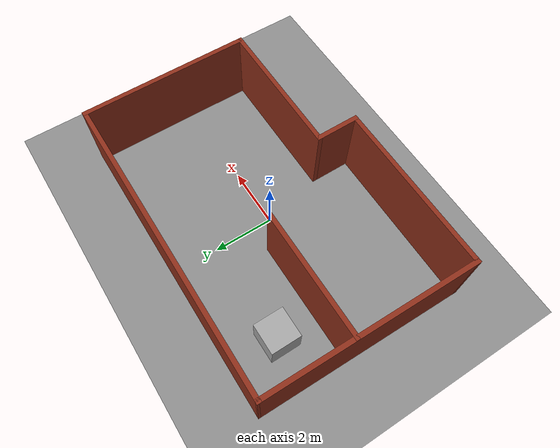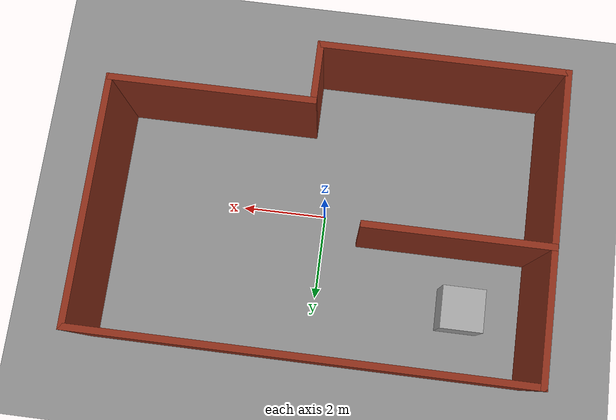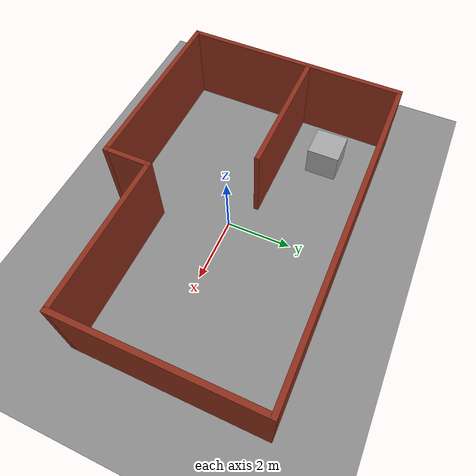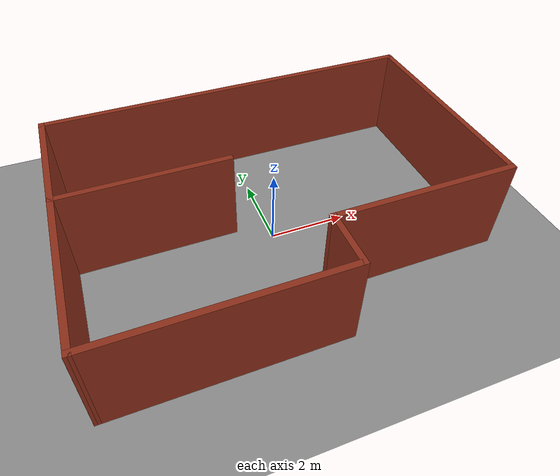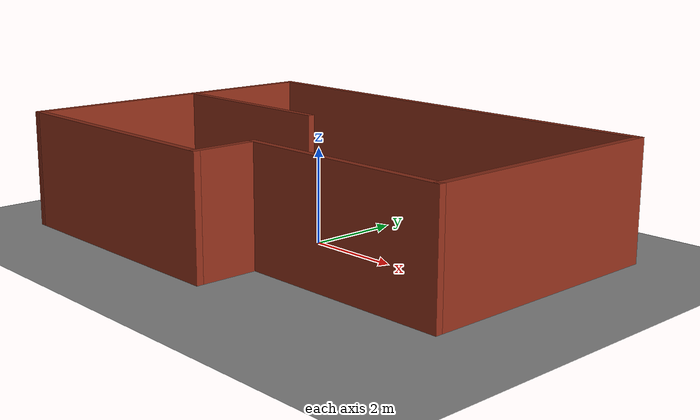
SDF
<?xml version='1.0' encoding='utf-8'?>
<sdf version="1.8">
  <world name="default">
    <physics name="1ms" type="ignored">
      <max_step_size>0.001</max_step_size>
      <real_time_factor>1.0</real_time_factor>
      <real_time_update_rate>1000</real_time_update_rate>
    </physics>
    <plugin
      filename="ignition-gazebo-physics-system"
      name="gz::sim::systems::Physics">
    </plugin>
    <plugin
      filename="ignition-gazebo-sensors-system"
      name="gz::sim::systems::Sensors">
      <render_engine>ogre2</render_engine>
    </plugin>
    <plugin
      filename="ignition-gazebo-air-pressure-system"
      name="gz::sim::systems::AirPressure">
    </plugin>
    <plugin
      filename="ignition-gazebo-altimeter-system"
      name="gz::sim::systems::Altimeter">
    </plugin>
    <plugin
      filename="ignition-gazebo-imu-system"
      name="gz::sim::systems::Imu">
    </plugin>
    <plugin
      filename="ignition-gazebo-magnetometer-system"
      name="gz::sim::systems::Magnetometer">
    </plugin>
    <plugin
      filename="ignition-gazebo-forcetorque-system"
      name="ignition::gazebo::systems::ForceTorque">
    </plugin>
    <plugin
      filename="ignition-gazebo-user-commands-system"
      name="gz::sim::systems::UserCommands">
    </plugin>
    <plugin
      filename="ignition-gazebo-scene-broadcaster-system"
      name="gz::sim::systems::SceneBroadcaster">
    </plugin>

    <light name="sun" type="directional">
      <cast_shadows>true</cast_shadows>
      <pose>0 0 10 0 -0 0</pose>
      <diffuse>0.8 0.8 0.8 1</diffuse>
      <specular>0.2 0.2 0.2 1</specular>
      <attenuation>
        <range>1000</range>
        <constant>0.9</constant>
        <linear>0.01</linear>
        <quadratic>0.001</quadratic>
      </attenuation>
      <direction>-0.5 0.1 -0.9</direction>
      <intensity>1.0</intensity>
    </light>
    <model name="ground_plane">
      <static>true</static>
      <link name="link">
        <collision name="collision">
          <geometry>
            <plane>
              <normal>0 0 1</normal>
              <size>100 100</size>
            </plane>
          </geometry>
          <surface>
            <friction>
              <ode>
                <mu>1.0</mu>
                <mu2>1.0</mu2>
              </ode>
              <torsional>
                <ode />
              </torsional>
            </friction>
            <contact>
              <ode />
            </contact>
            <bounce />
          </surface>
          <max_contacts>10</max_contacts>
        </collision>
        <visual name="visual">
          <cast_shadows>false</cast_shadows>
          <geometry>
            <plane>
              <normal>0 0 1</normal>
              <size>100 100</size>
            </plane>
          </geometry>
          <material>
            <ambient>0.55 0.55 0.55 1</ambient>
            <diffuse>0.55 0.55 0.55 1</diffuse>
            <specular>0.1 0.1 0.1 1</specular>
          </material>
        </visual>
        <self_collide>false</self_collide>
        <enable_wind>false</enable_wind>
        <kinematic>false</kinematic>
      </link>
    </model>
    <gravity>0 0 -9.81</gravity>
    <magnetic_field>6e-06 2.3e-05 -4.2e-05</magnetic_field>
    <atmosphere type="adiabatic" />
    <scene>
      <ambient>0.4 0.4 0.4 1</ambient>
      <background>0.7 0.7 0.7 1</background>
      <shadows>true</shadows>
    </scene>
    <wind />
    <spherical_coordinates>
      <surface_model>EARTH_WGS84</surface_model>
      <latitude_deg>0</latitude_deg>
      <longitude_deg>0</longitude_deg>
      <elevation>0</elevation>
      <heading_deg>0</heading_deg>
    </spherical_coordinates>
    <model name="mrworld">
      <pose>0.020942 0.031132 0 0 -0 0</pose>
      <link name="Wall_0">
        <collision name="Wall_0_Collision">
          <geometry>
            <box>
              <size>10.25 0.15 2.5</size>
            </box>
          </geometry>
          <pose>0 0 1.25 0 -0 0</pose>
          <max_contacts>10</max_contacts>
          <surface>
            <contact>
              <ode />
            </contact>
            <bounce />
            <friction>
              <torsional>
                <ode />
              </torsional>
              <ode />
            </friction>
          </surface>
        </collision>
        <visual name="Wall_0_Visual">
          <pose>0 0 1.25 0 -0 0</pose>
          <geometry>
            <box>
              <size>10.25 0.15 2.5</size>
            </box>
          </geometry>
          <material>
            <ambient>0.55 0.18 0.10 1</ambient>
            <diffuse>0.55 0.18 0.10 1</diffuse>
            <specular>0.1 0.1 0.1 1</specular>
          </material>
        </visual>
        <pose>0.050535 3.475 0 0 -0 0</pose>
        <self_collide>false</self_collide>
        <enable_wind>false</enable_wind>
        <kinematic>false</kinematic>
      </link>
      <link name="Wall_1">
        <collision name="Wall_1_Collision">
          <geometry>
            <box>
              <size>5.75 0.15 2.5</size>
            </box>
          </geometry>
          <pose>0 0 1.25 0 -0 0</pose>
          <max_contacts>10</max_contacts>
          <surface>
            <contact>
              <ode />
            </contact>
            <bounce />
            <friction>
              <torsional>
                <ode />
              </torsional>
              <ode />
            </friction>
          </surface>
        </collision>
        <visual name="Wall_1_Visual">
          <pose>0 0 1.25 0 -0 0</pose>
          <geometry>
            <box>
              <size>5.75 0.15 2.5</size>
            </box>
          </geometry>
          <material>
            <ambient>0.55 0.18 0.10 1</ambient>
            <diffuse>0.55 0.18 0.10 1</diffuse>
            <specular>0.1 0.1 0.1 1</specular>
          </material>
        </visual>
        <pose>5.10053 0.675 0 0 -0 -1.5708</pose>
        <self_collide>false</self_collide>
        <enable_wind>false</enable_wind>
        <kinematic>false</kinematic>
      </link>
      <link name="Wall_2">
        <collision name="Wall_2_Collision">
          <geometry>
            <box>
              <size>4.75 0.15 2.5</size>
            </box>
          </geometry>
          <pose>0 0 1.25 0 -0 0</pose>
          <max_contacts>10</max_contacts>
          <surface>
            <contact>
              <ode />
            </contact>
            <bounce />
            <friction>
              <torsional>
                <ode />
              </torsional>
              <ode />
            </friction>
          </surface>
        </collision>
        <visual name="Wall_2_Visual">
          <pose>0 0 1.25 0 -0 0</pose>
          <geometry>
            <box>
              <size>4.75 0.15 2.5</size>
            </box>
          </geometry>
          <material>
            <ambient>0.55 0.18 0.10 1</ambient>
            <diffuse>0.55 0.18 0.10 1</diffuse>
            <specular>0.1 0.1 0.1 1</specular>
          </material>
        </visual>
        <pose>2.80053 -2.125 0 0 -0 3.14159</pose>
        <self_collide>false</self_collide>
        <enable_wind>false</enable_wind>
        <kinematic>false</kinematic>
      </link>
      <link name="Wall_3">
        <collision name="Wall_3_Collision">
          <geometry>
            <box>
              <size>1.5 0.15 2.5</size>
            </box>
          </geometry>
          <pose>0 0 1.25 0 -0 0</pose>
          <max_contacts>10</max_contacts>
          <surface>
            <contact>
              <ode />
            </contact>
            <bounce />
            <friction>
              <torsional>
                <ode />
              </torsional>
              <ode />
            </friction>
          </surface>
        </collision>
        <visual name="Wall_3_Visual">
          <pose>0 0 1.25 0 -0 0</pose>
          <geometry>
            <box>
              <size>1.5 0.15 2.5</size>
            </box>
          </geometry>
          <material>
            <ambient>0.55 0.18 0.10 1</ambient>
            <diffuse>0.55 0.18 0.10 1</diffuse>
            <specular>0.1 0.1 0.1 1</specular>
          </material>
        </visual>
        <pose>0.500535 -2.8 0 0 -0 -1.5708</pose>
        <self_collide>false</self_collide>
        <enable_wind>false</enable_wind>
        <kinematic>false</kinematic>
      </link>
      <link name="Wall_4">
        <collision name="Wall_4_Collision">
          <geometry>
            <box>
              <size>5.75 0.15 2.5</size>
            </box>
          </geometry>
          <pose>0 0 1.25 0 -0 0</pose>
          <max_contacts>10</max_contacts>
          <surface>
            <contact>
              <ode />
            </contact>
            <bounce />
            <friction>
              <torsional>
                <ode />
              </torsional>
              <ode />
            </friction>
          </surface>
        </collision>
        <visual name="Wall_4_Visual">
          <pose>0 0 1.25 0 -0 0</pose>
          <geometry>
            <box>
              <size>5.75 0.15 2.5</size>
            </box>
          </geometry>
          <material>
            <ambient>0.55 0.18 0.10 1</ambient>
            <diffuse>0.55 0.18 0.10 1</diffuse>
            <specular>0.1 0.1 0.1 1</specular>
          </material>
        </visual>
        <pose>-2.29946 -3.475 0 0 -0 3.14159</pose>
        <self_collide>false</self_collide>
        <enable_wind>false</enable_wind>
        <kinematic>false</kinematic>
      </link>
      <link name="Wall_5">
        <collision name="Wall_5_Collision">
          <geometry>
            <box>
              <size>7.10072 0.15 2.5</size>
            </box>
          </geometry>
          <pose>0 0 1.25 0 -0 0</pose>
          <max_contacts>10</max_contacts>
          <surface>
            <contact>
              <ode />
            </contact>
            <bounce />
            <friction>
              <torsional>
                <ode />
              </torsional>
              <ode />
            </friction>
          </surface>
        </collision>
        <visual name="Wall_5_Visual">
          <pose>0 0 1.25 0 -0 0</pose>
          <geometry>
            <box>
              <size>7.10072 0.15 2.5</size>
            </box>
          </geometry>
          <material>
            <ambient>0.55 0.18 0.10 1</ambient>
            <diffuse>0.55 0.18 0.10 1</diffuse>
            <specular>0.1 0.1 0.1 1</specular>
          </material>
        </visual>
        <pose>-5.04946 0 0 0 -0 1.55641</pose>
        <self_collide>false</self_collide>
        <enable_wind>false</enable_wind>
        <kinematic>false</kinematic>
      </link>
      <link name="Wall_7">
        <collision name="Wall_7_Collision">
          <geometry>
            <box>
              <size>4.25 0.15 2.5</size>
            </box>
          </geometry>
          <pose>0 0 1.25 0 -0 0</pose>
          <max_contacts>10</max_contacts>
          <surface>
            <contact>
              <ode />
            </contact>
            <bounce />
            <friction>
              <torsional>
                <ode />
              </torsional>
              <ode />
            </friction>
          </surface>
        </collision>
        <visual name="Wall_7_Visual">
          <pose>0 0 1.25 0 -0 0</pose>
          <geometry>
            <box>
              <size>4.25 0.15 2.5</size>
            </box>
          </geometry>
          <material>
            <ambient>0.55 0.18 0.10 1</ambient>
            <diffuse>0.55 0.18 0.10 1</diffuse>
            <specular>0.1 0.1 0.1 1</specular>
          </material>
        </visual>
        <pose>-2.98445 0.519179 0 0 -0 0</pose>
        <self_collide>false</self_collide>
        <enable_wind>false</enable_wind>
        <kinematic>false</kinematic>
      </link>
      <static>true</static>
    </model>
    <gui fullscreen="0">
      <camera name="user_camera">
        <pose>5.20031 0.447422 14.5115 0 1.2138 -3.0895</pose>
        <view_controller>orbit</view_controller>
        <projection_type>perspective</projection_type>
      </camera>
    </gui>
    <model name="unit_box">
      <pose>-3.4364 1.92945 0.5 0 -0 0</pose>
      <link name="link">
        <inertial>
          <mass>1</mass>
          <inertia>
            <ixx>0.166667</ixx>
            <ixy>0</ixy>
            <ixz>0</ixz>
            <iyy>0.166667</iyy>
            <iyz>0</iyz>
            <izz>0.166667</izz>
          </inertia>
          <pose>0 0 0 0 -0 0</pose>
        </inertial>
        <collision name="collision">
          <geometry>
            <box>
              <size>1 1 1</size>
            </box>
          </geometry>
          <max_contacts>10</max_contacts>
          <surface>
            <contact>
              <ode />
            </contact>
            <bounce />
            <friction>
              <torsional>
                <ode />
              </torsional>
              <ode />
            </friction>
          </surface>
        </collision>
        <visual name="visual">
          <geometry>
            <box>
              <size>1 1 1</size>
            </box>
          </geometry>
          <material>
            <ambient>0.65 0.65 0.65 1</ambient>
            <diffuse>0.65 0.65 0.65 1</diffuse>
            <specular>0.1 0.1 0.1 1</specular>
          </material>
        </visual>
        <self_collide>false</self_collide>
        <enable_wind>false</enable_wind>
        <kinematic>false</kinematic>
      </link>
    </model>
  </world>
</sdf>
